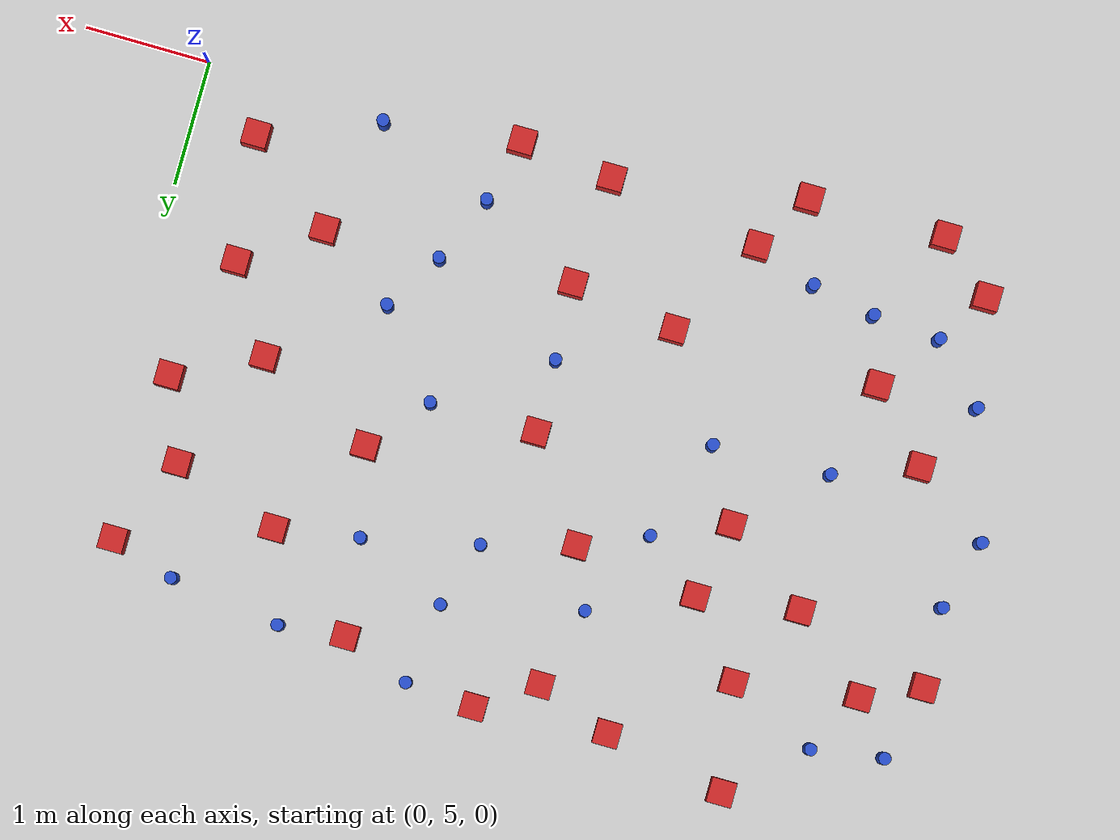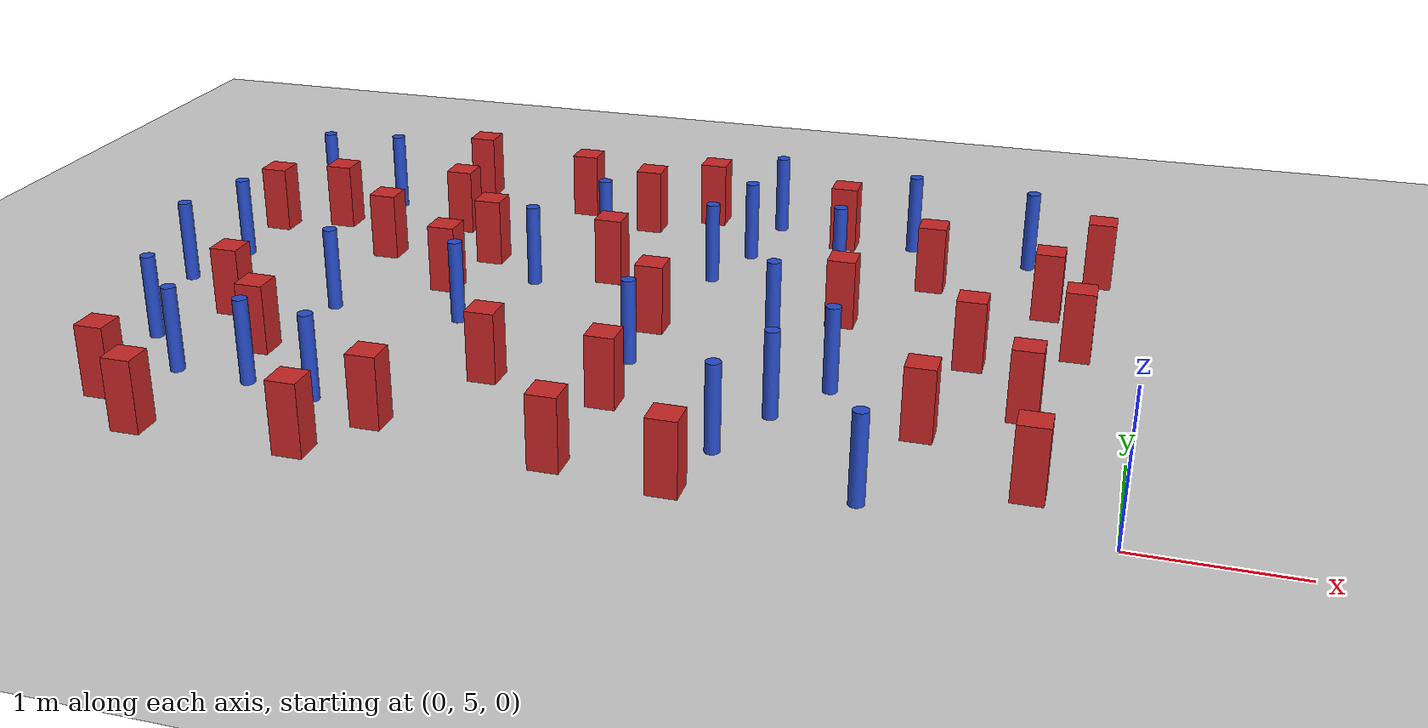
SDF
<sdf version="1.6">
 <world name="default">
  <model name="ground_plane">
   <static>1</static>
   <link name="link">
    <collision name="collision">
     <geometry><plane><normal>0 0 1</normal><size>100 100</size></plane></geometry>
     <surface><friction><ode><mu>100</mu><mu2>50</mu2></ode></friction></surface>
    </collision>
    <visual name="visual">
     <cast_shadows>0</cast_shadows>
     <geometry><plane><normal>0 0 1</normal><size>100 100</size></plane></geometry>
     <material>
      <ambient>1.0 1.0 1.0 1.0</ambient>
      <diffuse>0.8 0.8 0.8 1.0</diffuse>
      <specular>0.01 0.01 0.01 1.000000</specular>
     </material>
    </visual>
   </link>
  </model>
  <model name="square_post_obstacle0">
   <static>true</static>
   <pose>-5.28354271369 8.56203770138 -4.36207812815e-07 3.75137919937e-06 9.77721102514e-07 2.47381364184e-05</pose>
   <link name="link">
    <pose>0 0 0.25 0 -0 0</pose>
    <inertial>
     <mass>100</mass>
     <inertia>
      <ixx>0.166667</ixx>
      <ixy>0</ixy>
      <ixz>0</ixz>
      <iyy>0.166667</iyy>
      <iyz>0</iyz>
      <izz>0.166667</izz>
     </inertia>
    </inertial>
    <collision name="collision"><geometry><box><size>.2 .2 .5</size></box></geometry></collision>
    <visual name="visual">
     <geometry><box><size>.2 .2 .5</size></box></geometry>
     <material>
      <script><name>Gazebo/Red</name><uri>file://media/materials/scripts/gazebo.material</uri></script>
     </material>
    </visual>
   </link>
  </model>
  <model name="square_post_obstacle4">
   <static>true</static>
   <pose>-3.29330726181 5.02781933174 -4.36207812815e-07 3.75137919937e-06 9.77721102514e-07 2.47381364184e-05</pose>
   <link name="link">
    <pose>0 0 0.25 0 -0 0</pose>
    <inertial>
     <mass>100</mass>
     <inertia>
      <ixx>0.166667</ixx>
      <ixy>0</ixy>
      <ixz>0</ixz>
      <iyy>0.166667</iyy>
      <iyz>0</iyz>
      <izz>0.166667</izz>
     </inertia>
    </inertial>
    <collision name="collision"><geometry><box><size>.2 .2 .5</size></box></geometry></collision>
    <visual name="visual">
     <geometry><box><size>.2 .2 .5</size></box></geometry>
     <material>
      <script><name>Gazebo/Red</name><uri>file://media/materials/scripts/gazebo.material</uri></script>
     </material>
    </visual>
   </link>
  </model>
  <model name="square_post_obstacle18">
   <static>true</static>
   <pose>-3.2683818954 7.10099502662 -4.36207812815e-07 3.75137919937e-06 9.77721102514e-07 2.47381364184e-05</pose>
   <link name="link">
    <pose>0 0 0.25 0 -0 0</pose>
    <inertial>
     <mass>100</mass>
     <inertia>
      <ixx>0.166667</ixx>
      <ixy>0</ixy>
      <ixz>0</ixz>
      <iyy>0.166667</iyy>
      <iyz>0</iyz>
      <izz>0.166667</izz>
     </inertia>
    </inertial>
    <collision name="collision"><geometry><box><size>.2 .2 .5</size></box></geometry></collision>
    <visual name="visual">
     <geometry><box><size>.2 .2 .5</size></box></geometry>
     <material>
      <script><name>Gazebo/Red</name><uri>file://media/materials/scripts/gazebo.material</uri></script>
     </material>
    </visual>
   </link>
  </model>
  <model name="square_post_obstacle19">
   <static>true</static>
   <pose>-5.93158634506 4.75254016513 -4.36207812815e-07 3.75137919937e-06 9.77721102514e-07 2.47381364184e-05</pose>
   <link name="link">
    <pose>0 0 0.25 0 -0 0</pose>
    <inertial>
     <mass>100</mass>
     <inertia>
      <ixx>0.166667</ixx>
      <ixy>0</ixy>
      <ixz>0</ixz>
      <iyy>0.166667</iyy>
      <iyz>0</iyz>
      <izz>0.166667</izz>
     </inertia>
    </inertial>
    <collision name="collision"><geometry><box><size>.2 .2 .5</size></box></geometry></collision>
    <visual name="visual">
     <geometry><box><size>.2 .2 .5</size></box></geometry>
     <material>
      <script><name>Gazebo/Red</name><uri>file://media/materials/scripts/gazebo.material</uri></script>
     </material>
    </visual>
   </link>
  </model>
  <model name="pole_obstacle13">
   <static>true</static>
   <pose>-2.16814189125 6.00477530142 -3.09024884793e-07 -7.19054271912e-07 -2.11315075134e-07 -1.93935509266e-07</pose>
   <link name="link">
    <pose>0 0 0.3 0 -0 0</pose>
    <inertial>
     <mass>1</mass>
     <inertia><ixx>0.145833</ixx><ixy>0</ixy><ixz>0</ixz><iyy>0.145833</iyy><iyz>0</iyz><izz>0.125</izz></inertia>
    </inertial>
    <collision name="collision">
     <geometry><cylinder><radius>0.05</radius><length>.6</length></cylinder></geometry>
    </collision>
    <visual name="visual">
     <geometry><cylinder><radius>0.05</radius><length>.6</length></cylinder></geometry>
     <material>
      <script><name>Gazebo/Blue</name><uri>file://media/materials/scripts/gazebo.material</uri></script>
     </material>
    </visual>
   </link>
  </model>
  <model name="pole_obstacle14">
   <static>true</static>
   <pose>-1.74095882926 9.10305711861 -3.09024884793e-07 -7.19054271912e-07 -2.1131507515e-07 -1.93935509273e-07</pose>
   <link name="link">
    <pose>0 0 0.3 0 -0 0</pose>
    <inertial>
     <mass>1</mass>
     <inertia><ixx>0.145833</ixx><ixy>0</ixy><ixz>0</ixz><iyy>0.145833</iyy><iyz>0</iyz><izz>0.125</izz></inertia>
    </inertial>
    <collision name="collision">
     <geometry><cylinder><radius>0.05</radius><length>.6</length></cylinder></geometry>
    </collision>
    <visual name="visual">
     <geometry><cylinder><radius>0.05</radius><length>.6</length></cylinder></geometry>
     <material>
      <script><name>Gazebo/Blue</name><uri>file://media/materials/scripts/gazebo.material</uri></script>
     </material>
    </visual>
   </link>
  </model>
  <model name="square_post_obstacle25">
   <static>true</static>
   <pose>-5.63306946417 7.8790256819 -4.36207812815e-07 3.75137919937e-06 9.77721102514e-07 2.47381364184e-05</pose>
   <link name="link">
    <pose>0 0 0.25 0 -0 0</pose>
    <inertial>
     <mass>100</mass>
     <inertia>
      <ixx>0.166667</ixx>
      <ixy>0</ixy>
      <ixz>0</ixz>
      <iyy>0.166667</iyy>
      <iyz>0</iyz>
      <izz>0.166667</izz>
     </inertia>
    </inertial>
    <collision name="collision"><geometry><box><size>.2 .2 .5</size></box></geometry></collision>
    <visual name="visual">
     <geometry><box><size>.2 .2 .5</size></box></geometry>
     <material>
      <script><name>Gazebo/Red</name><uri>file://media/materials/scripts/gazebo.material</uri></script>
     </material>
    </visual>
   </link>
  </model>
  <model name="square_post_obstacle27">
   <static>true</static>
   <pose>-1.24184036225 6.02526848465 -4.36207812815e-07 3.75137919937e-06 9.77721102514e-07 2.47381364184e-05</pose>
   <link name="link">
    <pose>0 0 0.25 0 -0 0</pose>
    <inertial>
     <mass>100</mass>
     <inertia>
      <ixx>0.166667</ixx>
      <ixy>0</ixy>
      <ixz>0</ixz>
      <iyy>0.166667</iyy>
      <iyz>0</iyz>
      <izz>0.166667</izz>
     </inertia>
    </inertial>
    <collision name="collision"><geometry><box><size>.2 .2 .5</size></box></geometry></collision>
    <visual name="visual">
     <geometry><box><size>.2 .2 .5</size></box></geometry>
     <material>
      <script><name>Gazebo/Red</name><uri>file://media/materials/scripts/gazebo.material</uri></script>
     </material>
    </visual>
   </link>
  </model>
  <model name="pole_obstacle24">
   <static>true</static>
   <pose>-1.8780672445 6.46864079039 -3.09024884793e-07 -7.19054271912e-07 -2.11315075134e-07 -1.93935509265e-07</pose>
   <link name="link">
    <pose>0 0 0.3 0 -0 0</pose>
    <inertial>
     <mass>1</mass>
     <inertia><ixx>0.145833</ixx><ixy>0</ixy><ixz>0</ixz><iyy>0.145833</iyy><iyz>0</iyz><izz>0.125</izz></inertia>
    </inertial>
    <collision name="collision">
     <geometry><cylinder><radius>0.05</radius><length>.6</length></cylinder></geometry>
    </collision>
    <visual name="visual">
     <geometry><cylinder><radius>0.05</radius><length>.6</length></cylinder></geometry>
     <material>
      <script><name>Gazebo/Blue</name><uri>file://media/materials/scripts/gazebo.material</uri></script>
     </material>
    </visual>
   </link>
  </model>
  <model name="pole_obstacle31">
   <static>true</static>
   <pose>-6.57274695219 8.81214620992 -3.09024884793e-07 -7.19054271912e-07 -2.1131507513e-07 -1.93935509261e-07</pose>
   <link name="link">
    <pose>0 0 0.3 0 -0 0</pose>
    <inertial>
     <mass>1</mass>
     <inertia><ixx>0.145833</ixx><ixy>0</ixy><ixz>0</ixz><iyy>0.145833</iyy><iyz>0</iyz><izz>0.125</izz></inertia>
    </inertial>
    <collision name="collision">
     <geometry><cylinder><radius>0.05</radius><length>.6</length></cylinder></geometry>
    </collision>
    <visual name="visual">
     <geometry><cylinder><radius>0.05</radius><length>.6</length></cylinder></geometry>
     <material>
      <script><name>Gazebo/Blue</name><uri>file://media/materials/scripts/gazebo.material</uri></script>
     </material>
    </visual>
   </link>
  </model>
  <model name="pole_obstacle35">
   <static>true</static>
   <pose>-1.45600140566 5.09474783519 -3.09024884793e-07 -7.19054271912e-07 -2.11315075134e-07 -1.93935509265e-07</pose>
   <link name="link">
    <pose>0 0 0.3 0 -0 0</pose>
    <inertial>
     <mass>1</mass>
     <inertia><ixx>0.145833</ixx><ixy>0</ixy><ixz>0</ixz><iyy>0.145833</iyy><iyz>0</iyz><izz>0.125</izz></inertia>
    </inertial>
    <collision name="collision">
     <geometry><cylinder><radius>0.05</radius><length>.6</length></cylinder></geometry>
    </collision>
    <visual name="visual">
     <geometry><cylinder><radius>0.05</radius><length>.6</length></cylinder></geometry>
     <material>
      <script><name>Gazebo/Blue</name><uri>file://media/materials/scripts/gazebo.material</uri></script>
     </material>
    </visual>
   </link>
  </model>
  <model name="square_post_obstacle37">
   <static>true</static>
   <pose>-3.83529937194 8.99167762015 -4.36207812815e-07 3.75137919937e-06 9.77721102514e-07 2.47381364184e-05</pose>
   <link name="link">
    <pose>0 0 0.25 0 -0 0</pose>
    <inertial>
     <mass>100</mass>
     <inertia>
      <ixx>0.166667</ixx>
      <ixy>0</ixy>
      <ixz>0</ixz>
      <iyy>0.166667</iyy>
      <iyz>0</iyz>
      <izz>0.166667</izz>
     </inertia>
    </inertial>
    <collision name="collision"><geometry><box><size>.2 .2 .5</size></box></geometry></collision>
    <visual name="visual">
     <geometry><box><size>.2 .2 .5</size></box></geometry>
     <material>
      <script><name>Gazebo/Red</name><uri>file://media/materials/scripts/gazebo.material</uri></script>
     </material>
    </visual>
   </link>
  </model>
  <model name="square_post_obstacle38">
   <static>true</static>
   <pose>-2.54207769688 4.94290141401 -4.36207812815e-07 3.75137919937e-06 9.77721102514e-07 2.47381364184e-05</pose>
   <link name="link">
    <pose>0 0 0.25 0 -0 0</pose>
    <inertial>
     <mass>100</mass>
     <inertia>
      <ixx>0.166667</ixx>
      <ixy>0</ixy>
      <ixz>0</ixz>
      <iyy>0.166667</iyy>
      <iyz>0</iyz>
      <izz>0.166667</izz>
     </inertia>
    </inertial>
    <collision name="collision"><geometry><box><size>.2 .2 .5</size></box></geometry></collision>
    <visual name="visual">
     <geometry><box><size>.2 .2 .5</size></box></geometry>
     <material>
      <script><name>Gazebo/Red</name><uri>file://media/materials/scripts/gazebo.material</uri></script>
     </material>
    </visual>
   </link>
  </model>
  <model name="square_post_obstacle39">
   <static>true</static>
   <pose>-6.22898743984 6.5428900132 -4.36207812815e-07 3.75137919937e-06 9.77721102514e-07 2.47381364184e-05</pose>
   <link name="link">
    <pose>0 0 0.25 0 -0 0</pose>
    <inertial>
     <mass>100</mass>
     <inertia>
      <ixx>0.166667</ixx>
      <ixy>0</ixy>
      <ixz>0</ixz>
      <iyy>0.166667</iyy>
      <iyz>0</iyz>
      <izz>0.166667</izz>
     </inertia>
    </inertial>
    <collision name="collision"><geometry><box><size>.2 .2 .5</size></box></geometry></collision>
    <visual name="visual">
     <geometry><box><size>.2 .2 .5</size></box></geometry>
     <material>
      <script><name>Gazebo/Red</name><uri>file://media/materials/scripts/gazebo.material</uri></script>
     </material>
    </visual>
   </link>
  </model>
  <model name="pole_obstacle39">
   <static>true</static>
   <pose>-6.09879591267 5.54544272598 -3.09024884793e-07 -7.19054271911e-07 -2.1131507516e-07 -1.93935509277e-07</pose>
   <link name="link">
    <pose>0 0 0.3 0 -0 0</pose>
    <inertial>
     <mass>1</mass>
     <inertia><ixx>0.145833</ixx><ixy>0</ixy><ixz>0</ixz><iyy>0.145833</iyy><iyz>0</iyz><izz>0.125</izz></inertia>
    </inertial>
    <collision name="collision">
     <geometry><cylinder><radius>0.05</radius><length>.6</length></cylinder></geometry>
    </collision>
    <visual name="visual">
     <geometry><cylinder><radius>0.05</radius><length>.6</length></cylinder></geometry>
     <material>
      <script><name>Gazebo/Blue</name><uri>file://media/materials/scripts/gazebo.material</uri></script>
     </material>
    </visual>
   </link>
  </model>
  <model name="square_post_obstacle45">
   <static>true</static>
   <pose>-4.44557002708 9.21476780334 -4.36207812815e-07 3.75137919937e-06 9.77721102514e-07 2.47381364184e-05</pose>
   <link name="link">
    <pose>0 0 0.25 0 -0 0</pose>
    <inertial>
     <mass>100</mass>
     <inertia>
      <ixx>0.166667</ixx>
      <ixy>0</ixy>
      <ixz>0</ixz>
      <iyy>0.166667</iyy>
      <iyz>0</iyz>
      <izz>0.166667</izz>
     </inertia>
    </inertial>
    <collision name="collision"><geometry><box><size>.2 .2 .5</size></box></geometry></collision>
    <visual name="visual">
     <geometry><box><size>.2 .2 .5</size></box></geometry>
     <material>
      <script><name>Gazebo/Red</name><uri>file://media/materials/scripts/gazebo.material</uri></script>
     </material>
    </visual>
   </link>
  </model>
  <model name="square_post_obstacle51">
   <static>true</static>
   <pose>-6.36971887866 5.12460890325 -4.36207812815e-07 3.75137919937e-06 9.77721102514e-07 2.47381364184e-05</pose>
   <link name="link">
    <pose>0 0 0.25 0 -0 0</pose>
    <inertial>
     <mass>100</mass>
     <inertia>
      <ixx>0.166667</ixx>
      <ixy>0</ixy>
      <ixz>0</ixz>
      <iyy>0.166667</iyy>
      <iyz>0</iyz>
      <izz>0.166667</izz>
     </inertia>
    </inertial>
    <collision name="collision"><geometry><box><size>.2 .2 .5</size></box></geometry></collision>
    <visual name="visual">
     <geometry><box><size>.2 .2 .5</size></box></geometry>
     <material>
      <script><name>Gazebo/Red</name><uri>file://media/materials/scripts/gazebo.material</uri></script>
     </material>
    </visual>
   </link>
  </model>
  <model name="square_post_obstacle62">
   <static>true</static>
   <pose>-2.0149631202 7.56735489781 -4.36207812815e-07 3.75137919937e-06 9.77721102514e-07 2.47381364184e-05</pose>
   <link name="link">
    <pose>0 0 0.25 0 -0 0</pose>
    <inertial>
     <mass>100</mass>
     <inertia>
      <ixx>0.166667</ixx>
      <ixy>0</ixy>
      <ixz>0</ixz>
      <iyy>0.166667</iyy>
      <iyz>0</iyz>
      <izz>0.166667</izz>
     </inertia>
    </inertial>
    <collision name="collision"><geometry><box><size>.2 .2 .5</size></box></geometry></collision>
    <visual name="visual">
     <geometry><box><size>.2 .2 .5</size></box></geometry>
     <material>
      <script><name>Gazebo/Red</name><uri>file://media/materials/scripts/gazebo.material</uri></script>
     </material>
    </visual>
   </link>
  </model>
  <model name="square_post_obstacle69">
   <static>true</static>
   <pose>-4.82386277534 4.75961878907 -4.36207812815e-07 3.75137919937e-06 9.77721102514e-07 2.47381364184e-05</pose>
   <link name="link">
    <pose>0 0 0.25 0 -0 0</pose>
    <inertial>
     <mass>100</mass>
     <inertia>
      <ixx>0.166667</ixx>
      <ixy>0</ixy>
      <ixz>0</ixz>
      <iyy>0.166667</iyy>
      <iyz>0</iyz>
      <izz>0.166667</izz>
     </inertia>
    </inertial>
    <collision name="collision"><geometry><box><size>.2 .2 .5</size></box></geometry></collision>
    <visual name="visual">
     <geometry><box><size>.2 .2 .5</size></box></geometry>
     <material>
      <script><name>Gazebo/Red</name><uri>file://media/materials/scripts/gazebo.material</uri></script>
     </material>
    </visual>
   </link>
  </model>
  <model name="pole_obstacle68">
   <static>true</static>
   <pose>-6.52839002707 5.98515298602 -3.09024884793e-07 -7.19054271911e-07 -2.1131507516e-07 -1.93935509277e-07</pose>
   <link name="link">
    <pose>0 0 0.3 0 -0 0</pose>
    <inertial>
     <mass>1</mass>
     <inertia><ixx>0.145833</ixx><ixy>0</ixy><ixz>0</ixz><iyy>0.145833</iyy><iyz>0</iyz><izz>0.125</izz></inertia>
    </inertial>
    <collision name="collision">
     <geometry><cylinder><radius>0.05</radius><length>.6</length></cylinder></geometry>
    </collision>
    <visual name="visual">
     <geometry><cylinder><radius>0.05</radius><length>.6</length></cylinder></geometry>
     <material>
      <script><name>Gazebo/Blue</name><uri>file://media/materials/scripts/gazebo.material</uri></script>
     </material>
    </visual>
   </link>
  </model>
  <model name="square_post_obstacle75">
   <static>true</static>
   <pose>-0.646659176125 6.45284862812 -4.36207812815e-07 3.75137919937e-06 9.77721102514e-07 2.47381364184e-05</pose>
   <link name="link">
    <pose>0 0 0.25 0 -0 0</pose>
    <inertial>
     <mass>100</mass>
     <inertia>
      <ixx>0.166667</ixx>
      <ixy>0</ixy>
      <ixz>0</ixz>
      <iyy>0.166667</iyy>
      <iyz>0</iyz>
      <izz>0.166667</izz>
     </inertia>
    </inertial>
    <collision name="collision"><geometry><box><size>.2 .2 .5</size></box></geometry></collision>
    <visual name="visual">
     <geometry><box><size>.2 .2 .5</size></box></geometry>
     <material>
      <script><name>Gazebo/Red</name><uri>file://media/materials/scripts/gazebo.material</uri></script>
     </material>
    </visual>
   </link>
  </model>
  <model name="pole_obstacle69">
   <static>true</static>
   <pose>-5.99927341167 8.90070492182 -3.09024884793e-07 -7.19054271912e-07 -2.1131507513e-07 -1.93935509261e-07</pose>
   <link name="link">
    <pose>0 0 0.3 0 -0 0</pose>
    <inertial>
     <mass>1</mass>
     <inertia><ixx>0.145833</ixx><ixy>0</ixy><ixz>0</ixz><iyy>0.145833</iyy><iyz>0</iyz><izz>0.125</izz></inertia>
    </inertial>
    <collision name="collision">
     <geometry><cylinder><radius>0.05</radius><length>.6</length></cylinder></geometry>
    </collision>
    <visual name="visual">
     <geometry><cylinder><radius>0.05</radius><length>.6</length></cylinder></geometry>
     <material>
      <script><name>Gazebo/Blue</name><uri>file://media/materials/scripts/gazebo.material</uri></script>
     </material>
    </visual>
   </link>
  </model>
  <model name="pole_obstacle75">
   <static>true</static>
   <pose>-5.03783912806 5.40824525809 -3.09024884793e-07 -7.19054271911e-07 -2.1131507516e-07 -1.93935509277e-07</pose>
   <link name="link">
    <pose>0 0 0.3 0 -0 0</pose>
    <inertial>
     <mass>1</mass>
     <inertia><ixx>0.145833</ixx><ixy>0</ixy><ixz>0</ixz><iyy>0.145833</iyy><iyz>0</iyz><izz>0.125</izz></inertia>
    </inertial>
    <collision name="collision">
     <geometry><cylinder><radius>0.05</radius><length>.6</length></cylinder></geometry>
    </collision>
    <visual name="visual">
     <geometry><cylinder><radius>0.05</radius><length>.6</length></cylinder></geometry>
     <material>
      <script><name>Gazebo/Blue</name><uri>file://media/materials/scripts/gazebo.material</uri></script>
     </material>
    </visual>
   </link>
  </model>
  <model name="pole_obstacle76">
   <static>true</static>
   <pose>-4.34639352914 7.63928165405 -3.09024884793e-07 -7.19054271911e-07 -2.1131507516e-07 -1.93935509277e-07</pose>
   <link name="link">
    <pose>0 0 0.3 0 -0 0</pose>
    <inertial>
     <mass>1</mass>
     <inertia><ixx>0.145833</ixx><ixy>0</ixy><ixz>0</ixz><iyy>0.145833</iyy><iyz>0</iyz><izz>0.125</izz></inertia>
    </inertial>
    <collision name="collision">
     <geometry><cylinder><radius>0.05</radius><length>.6</length></cylinder></geometry>
    </collision>
    <visual name="visual">
     <geometry><cylinder><radius>0.05</radius><length>.6</length></cylinder></geometry>
     <material>
      <script><name>Gazebo/Blue</name><uri>file://media/materials/scripts/gazebo.material</uri></script>
     </material>
    </visual>
   </link>
  </model>
  <model name="square_post_obstacle77">
   <static>true</static>
   <pose>-0.389514029271 7.45711846456 -4.36207812815e-07 3.75137919937e-06 9.77721102514e-07 2.47381364184e-05</pose>
   <link name="link">
    <pose>0 0 0.25 0 -0 0</pose>
    <inertial>
     <mass>100</mass>
     <inertia>
      <ixx>0.166667</ixx>
      <ixy>0</ixy>
      <ixz>0</ixz>
      <iyy>0.166667</iyy>
      <iyz>0</iyz>
      <izz>0.166667</izz>
     </inertia>
    </inertial>
    <collision name="collision"><geometry><box><size>.2 .2 .5</size></box></geometry></collision>
    <visual name="visual">
     <geometry><box><size>.2 .2 .5</size></box></geometry>
     <material>
      <script><name>Gazebo/Red</name><uri>file://media/materials/scripts/gazebo.material</uri></script>
     </material>
    </visual>
   </link>
  </model>
  <model name="pole_obstacle88">
   <static>true</static>
   <pose>-5.55387601944 5.50672250355 -3.09024884793e-07 -7.19054271911e-07 -2.1131507516e-07 -1.93935509277e-07</pose>
   <link name="link">
    <pose>0 0 0.3 0 -0 0</pose>
    <inertial>
     <mass>1</mass>
     <inertia><ixx>0.145833</ixx><ixy>0</ixy><ixz>0</ixz><iyy>0.145833</iyy><iyz>0</iyz><izz>0.125</izz></inertia>
    </inertial>
    <collision name="collision">
     <geometry><cylinder><radius>0.05</radius><length>.6</length></cylinder></geometry>
    </collision>
    <visual name="visual">
     <geometry><cylinder><radius>0.05</radius><length>.6</length></cylinder></geometry>
     <material>
      <script><name>Gazebo/Blue</name><uri>file://media/materials/scripts/gazebo.material</uri></script>
     </material>
    </visual>
   </link>
  </model>
  <model name="pole_obstacle89">
   <static>true</static>
   <pose>-4.01608744456 8.34270675031 -3.09024884793e-07 -7.19054271912e-07 -2.1131507513e-07 -1.93935509262e-07</pose>
   <link name="link">
    <pose>0 0 0.3 0 -0 0</pose>
    <inertial>
     <mass>1</mass>
     <inertia><ixx>0.145833</ixx><ixy>0</ixy><ixz>0</ixz><iyy>0.145833</iyy><iyz>0</iyz><izz>0.125</izz></inertia>
    </inertial>
    <collision name="collision">
     <geometry><cylinder><radius>0.05</radius><length>.6</length></cylinder></geometry>
    </collision>
    <visual name="visual">
     <geometry><cylinder><radius>0.05</radius><length>.6</length></cylinder></geometry>
     <material>
      <script><name>Gazebo/Blue</name><uri>file://media/materials/scripts/gazebo.material</uri></script>
     </material>
    </visual>
   </link>
  </model>
  <model name="pole_obstacle91">
   <static>true</static>
   <pose>-3.09097295258 8.06966938804 -3.09024884848e-07 -7.19054271902e-07 -2.11315075199e-07 -1.93935509286e-07</pose>
   <link name="link">
    <pose>0 0 0.3 0 -0 0</pose>
    <inertial>
     <mass>1</mass>
     <inertia><ixx>0.145833</ixx><ixy>0</ixy><ixz>0</ixz><iyy>0.145833</iyy><iyz>0</iyz><izz>0.125</izz></inertia>
    </inertial>
    <collision name="collision">
     <geometry><cylinder><radius>0.05</radius><length>.6</length></cylinder></geometry>
    </collision>
    <visual name="visual">
     <geometry><cylinder><radius>0.05</radius><length>.6</length></cylinder></geometry>
     <material>
      <script><name>Gazebo/Blue</name><uri>file://media/materials/scripts/gazebo.material</uri></script>
     </material>
    </visual>
   </link>
  </model>
  <model name="pole_obstacle94">
   <static>true</static>
   <pose>-2.40180788831 5.46576479282 -3.09024884793e-07 -7.19054271912e-07 -2.11315075134e-07 -1.93935509266e-07</pose>
   <link name="link">
    <pose>0 0 0.3 0 -0 0</pose>
    <inertial>
     <mass>1</mass>
     <inertia><ixx>0.145833</ixx><ixy>0</ixy><ixz>0</ixz><iyy>0.145833</iyy><iyz>0</iyz><izz>0.125</izz></inertia>
    </inertial>
    <collision name="collision">
     <geometry><cylinder><radius>0.05</radius><length>.6</length></cylinder></geometry>
    </collision>
    <visual name="visual">
     <geometry><cylinder><radius>0.05</radius><length>.6</length></cylinder></geometry>
     <material>
      <script><name>Gazebo/Blue</name><uri>file://media/materials/scripts/gazebo.material</uri></script>
     </material>
    </visual>
   </link>
  </model>
  <model name="square_post_obstacle85">
   <static>true</static>
   <pose>-2.26956907011 9.04279955153 -4.36207812815e-07 3.75137919937e-06 9.77721102514e-07 2.47381364184e-05</pose>
   <link name="link">
    <pose>0 0 0.25 0 -0 0</pose>
    <inertial>
     <mass>100</mass>
     <inertia>
      <ixx>0.166667</ixx>
      <ixy>0</ixy>
      <ixz>0</ixz>
      <iyy>0.166667</iyy>
      <iyz>0</iyz>
      <izz>0.166667</izz>
     </inertia>
    </inertial>
    <collision name="collision"><geometry><box><size>.2 .2 .5</size></box></geometry></collision>
    <visual name="visual">
     <geometry><box><size>.2 .2 .5</size></box></geometry>
     <material>
      <script><name>Gazebo/Red</name><uri>file://media/materials/scripts/gazebo.material</uri></script>
     </material>
    </visual>
   </link>
  </model>
  <model name="square_post_obstacle94">
   <static>true</static>
   <pose>-5.42636788694 9.41268447964 -4.36207812815e-07 3.75137919937e-06 9.77721102514e-07 2.47381364184e-05</pose>
   <link name="link">
    <pose>0 0 0.25 0 -0 0</pose>
    <inertial>
     <mass>100</mass>
     <inertia>
      <ixx>0.166667</ixx>
      <ixy>0</ixy>
      <ixz>0</ixz>
      <iyy>0.166667</iyy>
      <iyz>0</iyz>
      <izz>0.166667</izz>
     </inertia>
    </inertial>
    <collision name="collision"><geometry><box><size>.2 .2 .5</size></box></geometry></collision>
    <visual name="visual">
     <geometry><box><size>.2 .2 .5</size></box></geometry>
     <material>
      <script><name>Gazebo/Red</name><uri>file://media/materials/scripts/gazebo.material</uri></script>
     </material>
    </visual>
   </link>
  </model>
  <model name="pole_obstacle107">
   <static>true</static>
   <pose>-2.9180255431 8.60345774617 -3.09024884848e-07 -7.19054271902e-07 -2.11315075199e-07 -1.93935509286e-07</pose>
   <link name="link">
    <pose>0 0 0.3 0 -0 0</pose>
    <inertial>
     <mass>1</mass>
     <inertia><ixx>0.145833</ixx><ixy>0</ixy><ixz>0</ixz><iyy>0.145833</iyy><iyz>0</iyz><izz>0.125</izz></inertia>
    </inertial>
    <collision name="collision">
     <geometry><cylinder><radius>0.05</radius><length>.6</length></cylinder></geometry>
    </collision>
    <visual name="visual">
     <geometry><cylinder><radius>0.05</radius><length>.6</length></cylinder></geometry>
     <material>
      <script><name>Gazebo/Blue</name><uri>file://media/materials/scripts/gazebo.material</uri></script>
     </material>
    </visual>
   </link>
  </model>
  <model name="square_post_obstacle97">
   <static>true</static>
   <pose>-4.08649211779 6.03174795235 -4.36207812815e-07 3.75137919937e-06 9.77721102514e-07 2.47381364184e-05</pose>
   <link name="link">
    <pose>0 0 0.25 0 -0 0</pose>
    <inertial>
     <mass>100</mass>
     <inertia>
      <ixx>0.166667</ixx>
      <ixy>0</ixy>
      <ixz>0</ixz>
      <iyy>0.166667</iyy>
      <iyz>0</iyz>
      <izz>0.166667</izz>
     </inertia>
    </inertial>
    <collision name="collision"><geometry><box><size>.2 .2 .5</size></box></geometry></collision>
    <visual name="visual">
     <geometry><box><size>.2 .2 .5</size></box></geometry>
     <material>
      <script><name>Gazebo/Red</name><uri>file://media/materials/scripts/gazebo.material</uri></script>
     </material>
    </visual>
   </link>
  </model>
  <model name="square_post_obstacle102">
   <static>true</static>
   <pose>-0.526387341929 5.45827596002 -4.36207812815e-07 3.75137919937e-06 9.77721102514e-07 2.47381364184e-05</pose>
   <link name="link">
    <pose>0 0 0.25 0 -0 0</pose>
    <inertial>
     <mass>100</mass>
     <inertia>
      <ixx>0.166667</ixx>
      <ixy>0</ixy>
      <ixz>0</ixz>
      <iyy>0.166667</iyy>
      <iyz>0</iyz>
      <izz>0.166667</izz>
     </inertia>
    </inertial>
    <collision name="collision"><geometry><box><size>.2 .2 .5</size></box></geometry></collision>
    <visual name="visual">
     <geometry><box><size>.2 .2 .5</size></box></geometry>
     <material>
      <script><name>Gazebo/Red</name><uri>file://media/materials/scripts/gazebo.material</uri></script>
     </material>
    </visual>
   </link>
  </model>
  <model name="pole_obstacle118">
   <static>true</static>
   <pose>-6.84632191542 6.98812252443 -3.09024884793e-07 -7.19054271911e-07 -2.1131507516e-07 -1.93935509277e-07</pose>
   <link name="link">
    <pose>0 0 0.3 0 -0 0</pose>
    <inertial>
     <mass>1</mass>
     <inertia><ixx>0.145833</ixx><ixy>0</ixy><ixz>0</ixz><iyy>0.145833</iyy><iyz>0</iyz><izz>0.125</izz></inertia>
    </inertial>
    <collision name="collision">
     <geometry><cylinder><radius>0.05</radius><length>.6</length></cylinder></geometry>
    </collision>
    <visual name="visual">
     <geometry><cylinder><radius>0.05</radius><length>.6</length></cylinder></geometry>
     <material>
      <script><name>Gazebo/Blue</name><uri>file://media/materials/scripts/gazebo.material</uri></script>
     </material>
    </visual>
   </link>
  </model>
  <model name="square_post_obstacle109">
   <static>true</static>
   <pose>-5.73960230318 6.0169626261 -4.36207812815e-07 3.75137919937e-06 9.77721102514e-07 2.47381364184e-05</pose>
   <link name="link">
    <pose>0 0 0.25 0 -0 0</pose>
    <inertial>
     <mass>100</mass>
     <inertia>
      <ixx>0.166667</ixx>
      <ixy>0</ixy>
      <ixz>0</ixz>
      <iyy>0.166667</iyy>
      <iyz>0</iyz>
      <izz>0.166667</izz>
     </inertia>
    </inertial>
    <collision name="collision"><geometry><box><size>.2 .2 .5</size></box></geometry></collision>
    <visual name="visual">
     <geometry><box><size>.2 .2 .5</size></box></geometry>
     <material>
      <script><name>Gazebo/Red</name><uri>file://media/materials/scripts/gazebo.material</uri></script>
     </material>
    </visual>
   </link>
  </model>
  <model name="pole_obstacle120">
   <static>true</static>
   <pose>-5.56845847216 6.79650400642 -3.09024884793e-07 -7.19054271911e-07 -2.1131507516e-07 -1.93935509277e-07</pose>
   <link name="link">
    <pose>0 0 0.3 0 -0 0</pose>
    <inertial>
     <mass>1</mass>
     <inertia><ixx>0.145833</ixx><ixy>0</ixy><ixz>0</ixz><iyy>0.145833</iyy><iyz>0</iyz><izz>0.125</izz></inertia>
    </inertial>
    <collision name="collision">
     <geometry><cylinder><radius>0.05</radius><length>.6</length></cylinder></geometry>
    </collision>
    <visual name="visual">
     <geometry><cylinder><radius>0.05</radius><length>.6</length></cylinder></geometry>
     <material>
      <script><name>Gazebo/Blue</name><uri>file://media/materials/scripts/gazebo.material</uri></script>
     </material>
    </visual>
   </link>
  </model>
  <model name="pole_obstacle131">
   <static>true</static>
   <pose>-2.82387518448 9.26183137906 -3.09024884848e-07 -7.19054271902e-07 -2.11315075199e-07 -1.93935509286e-07</pose>
   <link name="link">
    <pose>0 0 0.3 0 -0 0</pose>
    <inertial>
     <mass>1</mass>
     <inertia><ixx>0.145833</ixx><ixy>0</ixy><ixz>0</ixz><iyy>0.145833</iyy><iyz>0</iyz><izz>0.125</izz></inertia>
    </inertial>
    <collision name="collision">
     <geometry><cylinder><radius>0.05</radius><length>.6</length></cylinder></geometry>
    </collision>
    <visual name="visual">
     <geometry><cylinder><radius>0.05</radius><length>.6</length></cylinder></geometry>
     <material>
      <script><name>Gazebo/Blue</name><uri>file://media/materials/scripts/gazebo.material</uri></script>
     </material>
    </visual>
   </link>
  </model>
  <model name="pole_obstacle134">
   <static>true</static>
   <pose>-6.69020221045 7.55813548917 -3.09024884793e-07 -7.19054271911e-07 -2.1131507516e-07 -1.93935509277e-07</pose>
   <link name="link">
    <pose>0 0 0.3 0 -0 0</pose>
    <inertial>
     <mass>1</mass>
     <inertia><ixx>0.145833</ixx><ixy>0</ixy><ixz>0</ixz><iyy>0.145833</iyy><iyz>0</iyz><izz>0.125</izz></inertia>
    </inertial>
    <collision name="collision">
     <geometry><cylinder><radius>0.05</radius><length>.6</length></cylinder></geometry>
    </collision>
    <visual name="visual">
     <geometry><cylinder><radius>0.05</radius><length>.6</length></cylinder></geometry>
     <material>
      <script><name>Gazebo/Blue</name><uri>file://media/materials/scripts/gazebo.material</uri></script>
     </material>
    </visual>
   </link>
  </model>
  <model name="square_post_obstacle120">
   <static>true</static>
   <pose>-6.72698352345 8.19693224605 -4.36207812815e-07 3.75137919937e-06 9.77721102514e-07 2.47381364184e-05</pose>
   <link name="link">
    <pose>0 0 0.25 0 -0 0</pose>
    <inertial>
     <mass>100</mass>
     <inertia>
      <ixx>0.166667</ixx>
      <ixy>0</ixy>
      <ixz>0</ixz>
      <iyy>0.166667</iyy>
      <iyz>0</iyz>
      <izz>0.166667</izz>
     </inertia>
    </inertial>
    <collision name="collision"><geometry><box><size>.2 .2 .5</size></box></geometry></collision>
    <visual name="visual">
     <geometry><box><size>.2 .2 .5</size></box></geometry>
     <material>
      <script><name>Gazebo/Red</name><uri>file://media/materials/scripts/gazebo.material</uri></script>
     </material>
    </visual>
   </link>
  </model>
  <model name="square_post_obstacle123">
   <static>true</static>
   <pose>-4.53494060914 5.22379185447 -4.36207812815e-07 3.75137919937e-06 9.77721102514e-07 2.47381364184e-05</pose>
   <link name="link">
    <pose>0 0 0.25 0 -0 0</pose>
    <inertial>
     <mass>100</mass>
     <inertia>
      <ixx>0.166667</ixx>
      <ixy>0</ixy>
      <ixz>0</ixz>
      <iyy>0.166667</iyy>
      <iyz>0</iyz>
      <izz>0.166667</izz>
     </inertia>
    </inertial>
    <collision name="collision"><geometry><box><size>.2 .2 .5</size></box></geometry></collision>
    <visual name="visual">
     <geometry><box><size>.2 .2 .5</size></box></geometry>
     <material>
      <script><name>Gazebo/Red</name><uri>file://media/materials/scripts/gazebo.material</uri></script>
     </material>
    </visual>
   </link>
  </model>
  <model name="square_post_obstacle124">
   <static>true</static>
   <pose>-1.06605777181 7.11270899219 -4.36207812815e-07 3.75137919937e-06 9.77721102514e-07 2.47381364184e-05</pose>
   <link name="link">
    <pose>0 0 0.25 0 -0 0</pose>
    <inertial>
     <mass>100</mass>
     <inertia>
      <ixx>0.166667</ixx>
      <ixy>0</ixy>
      <ixz>0</ixz>
      <iyy>0.166667</iyy>
      <iyz>0</iyz>
      <izz>0.166667</izz>
     </inertia>
    </inertial>
    <collision name="collision"><geometry><box><size>.2 .2 .5</size></box></geometry></collision>
    <visual name="visual">
     <geometry><box><size>.2 .2 .5</size></box></geometry>
     <material>
      <script><name>Gazebo/Red</name><uri>file://media/materials/scripts/gazebo.material</uri></script>
     </material>
    </visual>
   </link>
  </model>
  <model name="square_post_obstacle129">
   <static>true</static>
   <pose>-6.26087151885 8.40370867467 -4.36207812815e-07 3.75137919937e-06 9.77721102514e-07 2.47381364184e-05</pose>
   <link name="link">
    <pose>0 0 0.25 0 -0 0</pose>
    <inertial>
     <mass>100</mass>
     <inertia>
      <ixx>0.166667</ixx>
      <ixy>0</ixy>
      <ixz>0</ixz>
      <iyy>0.166667</iyy>
      <iyz>0</iyz>
      <izz>0.166667</izz>
     </inertia>
    </inertial>
    <collision name="collision"><geometry><box><size>.2 .2 .5</size></box></geometry></collision>
    <visual name="visual">
     <geometry><box><size>.2 .2 .5</size></box></geometry>
     <material>
      <script><name>Gazebo/Red</name><uri>file://media/materials/scripts/gazebo.material</uri></script>
     </material>
    </visual>
   </link>
  </model>
  <model name="square_post_obstacle130">
   <static>true</static>
   <pose>-4.81479414685 7.99465236694 -4.36207812815e-07 3.75137919937e-06 9.77721102514e-07 2.47381364184e-05</pose>
   <link name="link">
    <pose>0 0 0.25 0 -0 0</pose>
    <inertial>
     <mass>100</mass>
     <inertia>
      <ixx>0.166667</ixx>
      <ixy>0</ixy>
      <ixz>0</ixz>
      <iyy>0.166667</iyy>
      <iyz>0</iyz>
      <izz>0.166667</izz>
     </inertia>
    </inertial>
    <collision name="collision"><geometry><box><size>.2 .2 .5</size></box></geometry></collision>
    <visual name="visual">
     <geometry><box><size>.2 .2 .5</size></box></geometry>
     <material>
      <script><name>Gazebo/Red</name><uri>file://media/materials/scripts/gazebo.material</uri></script>
     </material>
    </visual>
   </link>
  </model>
  <model name="pole_obstacle145">
   <static>true</static>
   <pose>-4.6219881178 6.82477321399 -3.09024884793e-07 -7.19054271911e-07 -2.1131507516e-07 -1.93935509277e-07</pose>
   <link name="link">
    <pose>0 0 0.3 0 -0 0</pose>
    <inertial>
     <mass>1</mass>
     <inertia><ixx>0.145833</ixx><ixy>0</ixy><ixz>0</ixz><iyy>0.145833</iyy><iyz>0</iyz><izz>0.125</izz></inertia>
    </inertial>
    <collision name="collision">
     <geometry><cylinder><radius>0.05</radius><length>.6</length></cylinder></geometry>
    </collision>
    <visual name="visual">
     <geometry><cylinder><radius>0.05</radius><length>.6</length></cylinder></geometry>
     <material>
      <script><name>Gazebo/Blue</name><uri>file://media/materials/scripts/gazebo.material</uri></script>
     </material>
    </visual>
   </link>
  </model>
  <model name="square_post_obstacle139">
   <static>true</static>
   <pose>-3.8121369834 7.8678235673 -4.36207812815e-07 3.75137919937e-06 9.77721102514e-07 2.47381364184e-05</pose>
   <link name="link">
    <pose>0 0 0.25 0 -0 0</pose>
    <inertial>
     <mass>100</mass>
     <inertia>
      <ixx>0.166667</ixx>
      <ixy>0</ixy>
      <ixz>0</ixz>
      <iyy>0.166667</iyy>
      <iyz>0</iyz>
      <izz>0.166667</izz>
     </inertia>
    </inertial>
    <collision name="collision"><geometry><box><size>.2 .2 .5</size></box></geometry></collision>
    <visual name="visual">
     <geometry><box><size>.2 .2 .5</size></box></geometry>
     <material>
      <script><name>Gazebo/Red</name><uri>file://media/materials/scripts/gazebo.material</uri></script>
     </material>
    </visual>
   </link>
  </model>
  <model name="square_post_obstacle147">
   <static>true</static>
   <pose>-0.638138516166 8.09650109221 -4.36207812815e-07 3.75137919937e-06 9.77721102514e-07 2.47381364184e-05</pose>
   <link name="link">
    <pose>0 0 0.25 0 -0 0</pose>
    <inertial>
     <mass>100</mass>
     <inertia>
      <ixx>0.166667</ixx>
      <ixy>0</ixy>
      <ixz>0</ixz>
      <iyy>0.166667</iyy>
      <iyz>0</iyz>
      <izz>0.166667</izz>
     </inertia>
    </inertial>
    <collision name="collision"><geometry><box><size>.2 .2 .5</size></box></geometry></collision>
    <visual name="visual">
     <geometry><box><size>.2 .2 .5</size></box></geometry>
     <material>
      <script><name>Gazebo/Red</name><uri>file://media/materials/scripts/gazebo.material</uri></script>
     </material>
    </visual>
   </link>
  </model>
  <model name="square_post_obstacle159">
   <static>true</static>
   <pose>-4.93441906876 7.37893882086 -4.36207812815e-07 3.75137919937e-06 9.77721102514e-07 2.47381364184e-05</pose>
   <link name="link">
    <pose>0 0 0.25 0 -0 0</pose>
    <inertial>
     <mass>100</mass>
     <inertia>
      <ixx>0.166667</ixx>
      <ixy>0</ixy>
      <ixz>0</ixz>
      <iyy>0.166667</iyy>
      <iyz>0</iyz>
      <izz>0.166667</izz>
     </inertia>
    </inertial>
    <collision name="collision"><geometry><box><size>.2 .2 .5</size></box></geometry></collision>
    <visual name="visual">
     <geometry><box><size>.2 .2 .5</size></box></geometry>
     <material>
      <script><name>Gazebo/Red</name><uri>file://media/materials/scripts/gazebo.material</uri></script>
     </material>
    </visual>
   </link>
  </model>
  <model name="square_post_obstacle160">
   <static>true</static>
   <pose>-1.50025923985 8.38341199492 -4.36207812815e-07 3.75137919937e-06 9.77721102514e-07 2.47381364184e-05</pose>
   <link name="link">
    <pose>0 0 0.25 0 -0 0</pose>
    <inertial>
     <mass>100</mass>
     <inertia>
      <ixx>0.166667</ixx>
      <ixy>0</ixy>
      <ixz>0</ixz>
      <iyy>0.166667</iyy>
      <iyz>0</iyz>
      <izz>0.166667</izz>
     </inertia>
    </inertial>
    <collision name="collision"><geometry><box><size>.2 .2 .5</size></box></geometry></collision>
    <visual name="visual">
     <geometry><box><size>.2 .2 .5</size></box></geometry>
     <material>
      <script><name>Gazebo/Red</name><uri>file://media/materials/scripts/gazebo.material</uri></script>
     </material>
    </visual>
   </link>
  </model>
  <model name="pole_obstacle172">
   <static>true</static>
   <pose>-3.25968501396 6.52177654813 -3.09024884793e-07 -7.19054271912e-07 -2.11315075134e-07 -1.93935509266e-07</pose>
   <link name="link">
    <pose>0 0 0.3 0 -0 0</pose>
    <inertial>
     <mass>1</mass>
     <inertia><ixx>0.145833</ixx><ixy>0</ixy><ixz>0</ixz><iyy>0.145833</iyy><iyz>0</iyz><izz>0.125</izz></inertia>
    </inertial>
    <collision name="collision">
     <geometry><cylinder><radius>0.05</radius><length>.6</length></cylinder></geometry>
    </collision>
    <visual name="visual">
     <geometry><cylinder><radius>0.05</radius><length>.6</length></cylinder></geometry>
     <material>
      <script><name>Gazebo/Blue</name><uri>file://media/materials/scripts/gazebo.material</uri></script>
     </material>
    </visual>
   </link>
  </model>
  <model name="square_post_obstacle169">
   <static>true</static>
   <pose>-3.22839948171 5.901970862 -4.36207812815e-07 3.75137919937e-06 9.77721102514e-07 2.47381364184e-05</pose>
   <link name="link">
    <pose>0 0 0.25 0 -0 0</pose>
    <inertial>
     <mass>100</mass>
     <inertia>
      <ixx>0.166667</ixx>
      <ixy>0</ixy>
      <ixz>0</ixz>
      <iyy>0.166667</iyy>
      <iyz>0</iyz>
      <izz>0.166667</izz>
     </inertia>
    </inertial>
    <collision name="collision"><geometry><box><size>.2 .2 .5</size></box></geometry></collision>
    <visual name="visual">
     <geometry><box><size>.2 .2 .5</size></box></geometry>
     <material>
      <script><name>Gazebo/Red</name><uri>file://media/materials/scripts/gazebo.material</uri></script>
     </material>
    </visual>
   </link>
  </model>
  <model name="pole_obstacle180">
   <static>true</static>
   <pose>-0.843052368443 8.97763601899 -3.09024884793e-07 -7.19054271911e-07 -2.11315075158e-07 -1.93935509277e-07</pose>
   <link name="link">
    <pose>0 0 0.3 0 -0 0</pose>
    <inertial>
     <mass>1</mass>
     <inertia><ixx>0.145833</ixx><ixy>0</ixy><ixz>0</ixz><iyy>0.145833</iyy><iyz>0</iyz><izz>0.125</izz></inertia>
    </inertial>
    <collision name="collision">
     <geometry><cylinder><radius>0.05</radius><length>.6</length></cylinder></geometry>
    </collision>
    <visual name="visual">
     <geometry><cylinder><radius>0.05</radius><length>.6</length></cylinder></geometry>
     <material>
      <script><name>Gazebo/Blue</name><uri>file://media/materials/scripts/gazebo.material</uri></script>
     </material>
    </visual>
   </link>
  </model>
  <model name="square_post_obstacle178">
   <static>true</static>
   <pose>-0.318407797384 8.80724143116 -4.36207812815e-07 3.75137919937e-06 9.77721102514e-07 2.47381364184e-05</pose>
   <link name="link">
    <pose>0 0 0.25 0 -0 0</pose>
    <inertial>
     <mass>100</mass>
     <inertia>
      <ixx>0.166667</ixx>
      <ixy>0</ixy>
      <ixz>0</ixz>
      <iyy>0.166667</iyy>
      <iyz>0</iyz>
      <izz>0.166667</izz>
     </inertia>
    </inertial>
    <collision name="collision"><geometry><box><size>.2 .2 .5</size></box></geometry></collision>
    <visual name="visual">
     <geometry><box><size>.2 .2 .5</size></box></geometry>
     <material>
      <script><name>Gazebo/Red</name><uri>file://media/materials/scripts/gazebo.material</uri></script>
     </material>
    </visual>
   </link>
  </model>
  <model name="square_post_obstacle200">
   <static>true</static>
   <pose>-3.382251027 9.29813425377 -4.36207812815e-07 3.75137919937e-06 9.77721102514e-07 2.47381364184e-05</pose>
   <link name="link">
    <pose>0 0 0.25 0 -0 0</pose>
    <inertial>
     <mass>100</mass>
     <inertia>
      <ixx>0.166667</ixx>
      <ixy>0</ixy>
      <ixz>0</ixz>
      <iyy>0.166667</iyy>
      <iyz>0</iyz>
      <izz>0.166667</izz>
     </inertia>
    </inertial>
    <collision name="collision"><geometry><box><size>.2 .2 .5</size></box></geometry></collision>
    <visual name="visual">
     <geometry><box><size>.2 .2 .5</size></box></geometry>
     <material>
      <script><name>Gazebo/Red</name><uri>file://media/materials/scripts/gazebo.material</uri></script>
     </material>
    </visual>
   </link>
  </model>
  <model name="pole_obstacle192">
   <static>true</static>
   <pose>-2.41016071943 7.10856781249 -3.09024884793e-07 -7.19054271912e-07 -2.11315075134e-07 -1.93935509266e-07</pose>
   <link name="link">
    <pose>0 0 0.3 0 -0 0</pose>
    <inertial>
     <mass>1</mass>
     <inertia><ixx>0.145833</ixx><ixy>0</ixy><ixz>0</ixz><iyy>0.145833</iyy><iyz>0</iyz><izz>0.125</izz></inertia>
    </inertial>
    <collision name="collision">
     <geometry><cylinder><radius>0.05</radius><length>.6</length></cylinder></geometry>
    </collision>
    <visual name="visual">
     <geometry><cylinder><radius>0.05</radius><length>.6</length></cylinder></geometry>
     <material>
      <script><name>Gazebo/Blue</name><uri>file://media/materials/scripts/gazebo.material</uri></script>
     </material>
    </visual>
   </link>
  </model>
  <model name="pole_obstacle210">
   <static>true</static>
   <pose>-2.17390653248 8.27272254706 -3.09024884848e-07 -7.19054271902e-07 -2.11315075199e-07 -1.93935509286e-07</pose>
   <link name="link">
    <pose>0 0 0.3 0 -0 0</pose>
    <inertial>
     <mass>1</mass>
     <inertia><ixx>0.145833</ixx><ixy>0</ixy><ixz>0</ixz><iyy>0.145833</iyy><iyz>0</iyz><izz>0.125</izz></inertia>
    </inertial>
    <collision name="collision">
     <geometry><cylinder><radius>0.05</radius><length>.6</length></cylinder></geometry>
    </collision>
    <visual name="visual">
     <geometry><cylinder><radius>0.05</radius><length>.6</length></cylinder></geometry>
     <material>
      <script><name>Gazebo/Blue</name><uri>file://media/materials/scripts/gazebo.material</uri></script>
     </material>
    </visual>
   </link>
  </model>
 </world>
</sdf>
